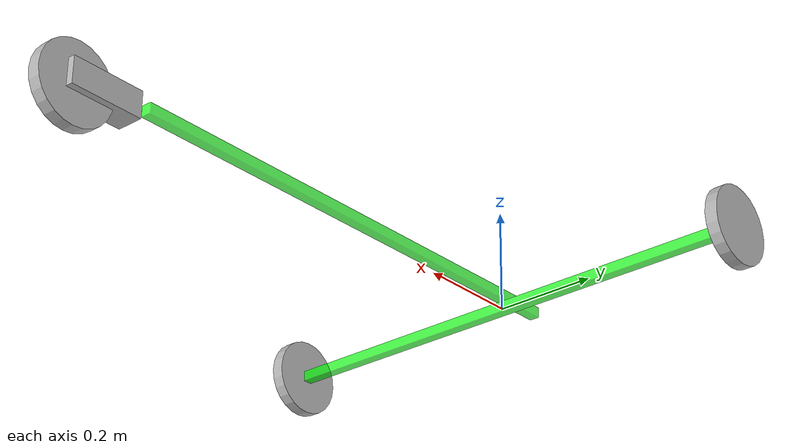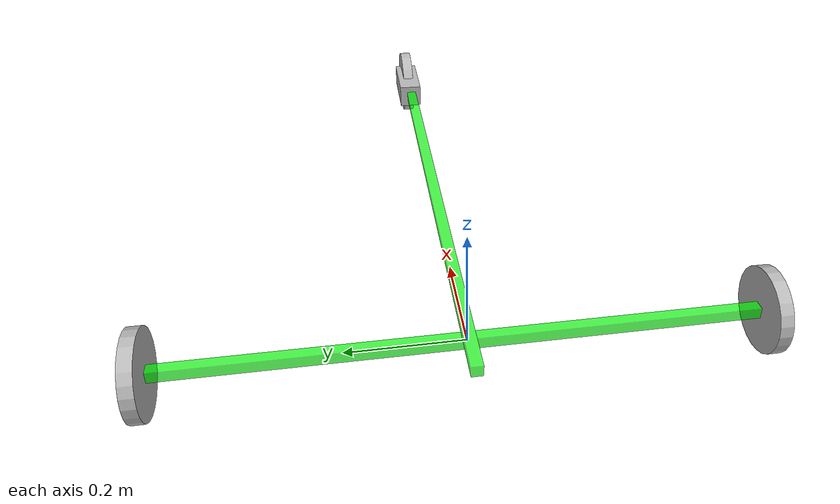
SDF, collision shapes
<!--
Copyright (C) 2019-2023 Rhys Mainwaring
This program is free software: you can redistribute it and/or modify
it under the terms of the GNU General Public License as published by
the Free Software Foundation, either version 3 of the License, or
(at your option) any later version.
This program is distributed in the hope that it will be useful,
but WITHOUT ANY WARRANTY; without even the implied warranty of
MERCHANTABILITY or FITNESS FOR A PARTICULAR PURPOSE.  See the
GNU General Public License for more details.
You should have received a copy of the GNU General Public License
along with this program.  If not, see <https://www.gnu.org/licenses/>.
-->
<?xml version="1.0"?>
<sdf version="1.6">
  <model name="land_yacht_base">

    <!-- Base -->
    <link name="base_link">
      <!-- Main beam -->
      <visual name="base">
        <geometry>
          <mesh>
            <uri>model://land_yacht_base/meshes/land_yacht_base.dae</uri>
          </mesh>
        </geometry>
      </visual>

      <!-- Main beam -->
      <collision name="main_beam_collision">
        <pose>0.4 0 0.025 0 0 0</pose>
        <geometry>
          <box>
            <size>1.0 0.020 0.020</size>
          </box>
        </geometry>
      </collision>

      <!-- Cross beam -->
      <collision name="cross_beam_collision">
        <pose>0 0 0 0 0 0</pose>
        <geometry>
          <box>
            <size>0.020 1.0 0.020</size>
          </box>
        </geometry>
      </collision>

      <visual name="imu_visual">
        <pose>0.05 0 0.06 0 0 0</pose>
        <geometry>
          <box>
            <size>0.06 0.04 0.01</size>
          </box>
        </geometry>
        <material>
          <ambient>0.0 1.0 0.0 0.7</ambient>
          <diffuse>0.0 1.0 0.0 0.7</diffuse>
          <specular>0.1 0.1 0.1 0.7</specular>
        </material>
      </visual>

      <sensor name="imu_sensor" type="imu">
        <pose>0.05 0 0.06 3.141593 0 0</pose>
        <always_on>1</always_on>
        <update_rate>1000</update_rate>
        <visualize>1</visualize>
      </sensor>

      <visual name="anemometer_visual">
        <pose>0.67 0 0.5165 0 0 0</pose>
        <geometry>
          <cylinder>
            <radius>0.034</radius>
            <length>0.04</length>
          </cylinder>
        </geometry>
        <material>
          <ambient>0.0 1.0 0.0 0.7</ambient>
          <diffuse>0.0 1.0 0.0 0.7</diffuse>
          <specular>0.1 0.1 0.1 0.7</specular>
        </material>
      </visual>

      <sensor name="anemometer" type="custom" gz:type="anemometer">
        <pose>0.67 0 0.5165 0 0 0</pose>
        <always_on>1</always_on>
        <update_rate>30</update_rate>
        <gz:anemometer>
          <noise type="gaussian">
            <mean>0</mean>
            <stddev>0</stddev>
          </noise>
        </gz:anemometer>
      </sensor>

      <inertial>
        <pose>0.15 0 0.04 0 0 0</pose>
        <mass>3.544</mass>
        <inertia>
          <ixx>0.008623733</ixx>
          <ixy>0</ixy>
          <iyy>0.019521533</iyy>
          <iyz>0</iyz>
          <izz>0.026018867</izz>
        </inertia>
      </inertial>
    </link>

    <!-- Right wheel -->
    <link name="right_wheel_link">
      <pose>0 -0.512 0 1.570796327 0 0</pose>
      <visual name="right_wheel_visual">
        <geometry>
          <mesh>
            <uri>model://land_yacht_base/meshes/sand_wheel.dae</uri>
          </mesh>
        </geometry>
      </visual>
      <collision name="right_wheel_collision">
        <geometry>
          <cylinder>
            <radius>0.0750</radius>
            <length>0.0235</length>
          </cylinder>
        </geometry>
      </collision>
      <inertial>
        <mass>0.112</mass>
        <inertia>
          <ixx>0.000162654</ixx>
          <ixy>0</ixy>
          <iyy>0.000162654</iyy>
          <iyz>0</iyz>
          <izz>0.000315</izz>
        </inertia>
      </inertial>
    </link>

    <joint type="revolute" name="right_wheel_joint">
      <pose>0 0 0 0 0 0</pose>
      <child>right_wheel_link</child>
      <parent>base_link</parent>
      <axis>
        <xyz>0 0 1</xyz>
        <dynamics>
          <damping>0.001</damping>
        </dynamics>
        <limit>
          <lower>-1.0E8</lower>
          <upper>1.0E8</upper>
        </limit>
      </axis>
    </joint>

    <!-- Left wheel -->
    <link name="left_wheel_link">
      <pose>0 0.512 0 1.570796327 0 0</pose>
      <visual name="left_wheel_visual">
        <geometry>
          <mesh>
            <uri>model://land_yacht_base/meshes/sand_wheel.dae</uri>
          </mesh>
        </geometry>
      </visual>
      <collision name="left_wheel_collision">
        <geometry>
          <cylinder>
            <radius>0.0750</radius>
            <length>0.0235</length>
          </cylinder>
        </geometry>
      </collision>
      <inertial>
        <mass>0.112</mass>
        <inertia>
          <ixx>0.000162654</ixx>
          <ixy>0</ixy>
          <iyy>0.000162654</iyy>
          <iyz>0</iyz>
          <izz>0.000315</izz>
        </inertia>
      </inertial>
    </link>

    <joint type="revolute" name="left_wheel_joint">
      <pose>0 0 0 0 0 0</pose>
      <child>left_wheel_link</child>
      <parent>base_link</parent>
      <axis>
        <xyz>0 0 1</xyz>
        <dynamics>
          <damping>0.001</damping>
        </dynamics>
        <limit>
          <lower>-1.0E8</lower>
          <upper>1.0E8</upper>
        </limit>
      </axis>
    </joint>

    <!-- Steering unit -->
    <link name="steering_link">
      <pose>1.05 0 0 0 0 0</pose>

      <visual name="steering_visual">
        <pose>0 0 0 0 0 0</pose>
        <geometry>
          <mesh>
            <uri>model://land_yacht_base/meshes/land_yacht_forks_v4.dae</uri>
          </mesh>
        </geometry>
      </visual>
      <collision name="steering_collision">
        <pose>-0.05 0 0.01 0 0 0</pose>
        <geometry>
          <box>
            <size>0.14 0.05 0.05</size>
          </box>
        </geometry>
      </collision>

      <inertial>
        <pose>-0.05 0 0.01 0 0 0</pose>
        <mass>0.073</mass>
        <inertia>
          <ixx>3.04167E-05</ixx>
          <ixy>0</ixy>
          <iyy>0.000134442</iyy>
          <iyz>0</iyz>
          <izz>0.000134442</izz>
        </inertia>
      </inertial>
    </link>

    <joint type="revolute" name="steering_joint">
      <pose>-0.114 0 0.045 0 0 0</pose>
      <child>steering_link</child>
      <parent>base_link</parent>
      <axis>
        <xyz>-1 0 0.700207538</xyz>
        <dynamics>
          <damping>0.01</damping>
        </dynamics>
        <limit>
          <lower>-0.8</lower>
          <upper>0.8</upper>
        </limit>
      </axis>
    </joint>

    <!-- Front wheel -->
    <link name="front_wheel_link">
      <pose>1.05 0 0 1.570796327 0 0</pose>
      <visual name="front_wheel_visual">
        <geometry>
          <mesh>
            <uri>model://land_yacht_base/meshes/sand_wheel.dae</uri>
          </mesh>
        </geometry>
      </visual>
      <collision name="front_wheel_collision">
        <geometry>
          <cylinder>
            <radius>0.0750</radius>
            <length>0.0235</length>
          </cylinder>
        </geometry>
        <surface>
          <friction>
            <ode>
              <mu>1.0</mu>
              <mu2>1.0</mu2>
              <fdir1>1 0 0</fdir1>
            </ode>
          </friction>
        </surface>
      </collision>
      <inertial>
        <mass>0.112</mass>
        <inertia>
          <ixx>0.000162654</ixx>
          <ixy>0</ixy>
          <iyy>0.000162654</iyy>
          <iyz>0</iyz>
          <izz>0.000315</izz>
        </inertia>
      </inertial>
    </link>

    <joint type="revolute" name="front_wheel_joint">
      <pose>0 0 0 0 0 0</pose>
      <child>front_wheel_link</child>
      <parent>steering_link</parent>
      <axis>
        <xyz>0 0 1</xyz>
        <dynamics>
          <damping>0.01</damping>
        </dynamics>
        <limit>
          <lower>-1.0E8</lower>
          <upper>1.0E8</upper>
        </limit>
      </axis>
      <sensor name="force_torque_sensor" type="force_torque">
        <always_on>true</always_on>
        <update_rate>30</update_rate>
        <visualize>true</visualize>
      </sensor>
    </joint>

    <!-- Thruster -->

  </model>
</sdf>
